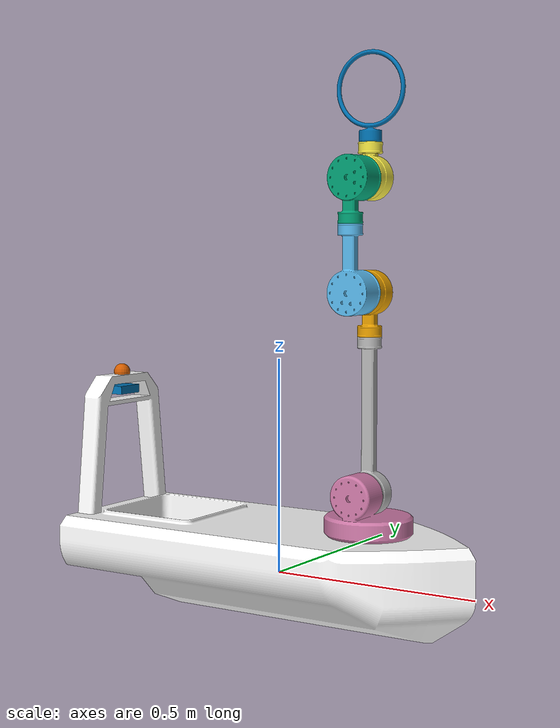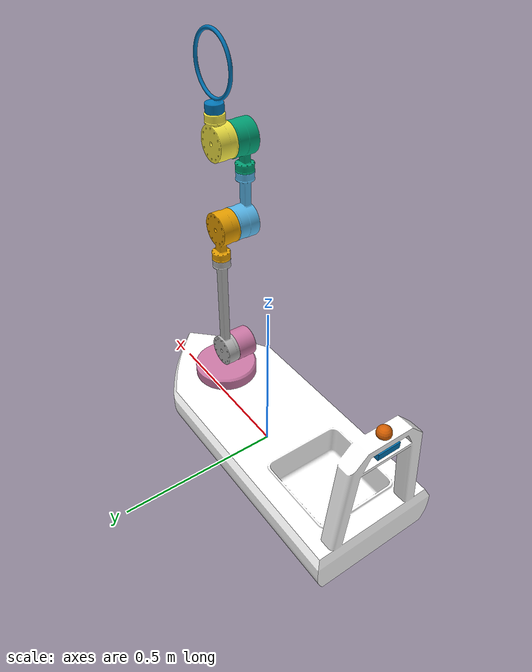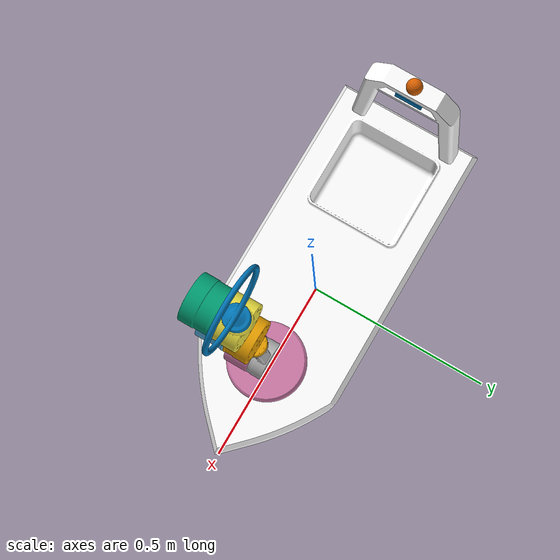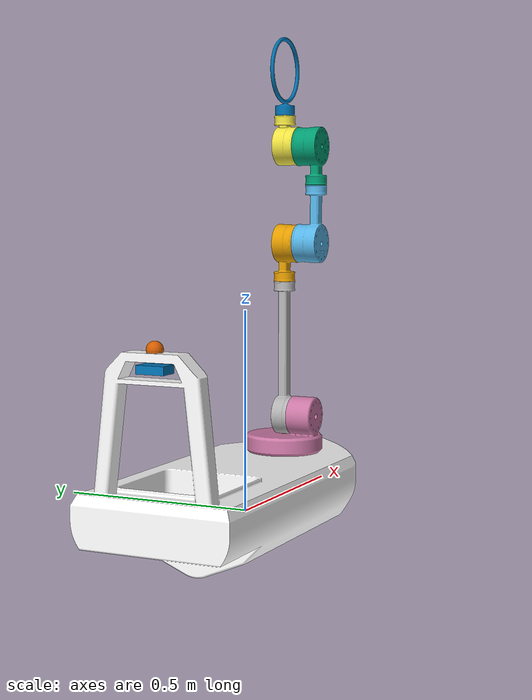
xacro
<?xml version="1.0"?>

<robot name="boat_arm" xmlns:xacro="http://www.ros.org/wiki/xacro">
  <xacro:include filename="$(find semesterprosjekt)/urdf/common_macros.xacro" />
  <xacro:include filename="$(find semesterprosjekt)/urdf/boat_arm.urdf.gazebo" />

  <material name="COLOR">
     <color rgba="1 1 1 1"/>
   </material>
    <link name='base_link'>
      <pose>0 0 ${-(0.221/2) + (0.05/2)} 0 0 0</pose>
      <visual name='chassis_visual'>
        <origin xyz="${1/2} ${0.4/2} ${-(0.221/2)}" rpy="0 0 ${pi/2}"/>
        <geometry>
          <mesh filename="package://semesterprosjekt/mesh/Bote.stl" scale="0.001 0.001 0.001"/>
        </geometry>
        <material name="COLOR"/>
      </visual>
      <collision>
        <origin xyz="0 0 0" rpy="0 0 0"/>
        <geometry>0.07
          <box size="1 0.3 0.221"/>
        </geometry>
      </collision>
      <inertial>
        <mass value="30"/>
        <inertia ixx="0.1075" ixy="0.0" ixz="0.0" iyy="10.0008" iyz="0.0" izz="10.0075"/>
      </inertial>
  </link>

  <link name='front_ball'>
    <collision>
      <geometry>
       <sphere radius="0.05"/>
     </geometry>
     <origin rpy="0 0 0" xyz="0 0 0"/>
   </collision>
   <inertial>
     <mass value="0.01"/>
     <inertia ixx="0.1075" ixy="0.0" ixz="0.0" iyy="0.0008" iyz="0.0" izz="0.0075"/>
   </inertial>
  </link>

  <joint name="front_ball_j" type="continuous">
    <origin xyz="0.3 0 ${-(0.221/2)+(0.05/2)}" rpy="0 0 0"/>
    <parent link="base_link"/>
    <child link="front_ball"/>
    <axis xyz="1 1 1" rpy="1 1 1"/>
  </joint>

  <joint name="left_rear_wheel_j" type="continuous">
    <origin xyz="-0.20 0.20 ${-(0.221/2)+0.10-(0.05/2)}" rpy="${-pi/2} 0 0"/>
    <parent link="base_link"/>
    <child link="lr_wheel"/>
    <axis xyz="0 0 1" rpy="0 0 0"/>
    <limit effort="100" velocity="100"/>
  </joint>

  <xacro:link_wheel link_name="lr_wheel">
    <!-- collison -->
    <origin xyz="0 0 0" rpy="0 0 0"/>
    <!-- inertia -->
    <origin xyz="0 0 0" rpy="0 0 0"/>
  </xacro:link_wheel>

  <joint name="right_rear_wheel_j" type="continuous">
    <origin xyz="-0.20 -0.20 ${-(0.221/2)+0.10-(0.05/2)}" rpy="${-pi/2} 0 0"/>
    <parent link="base_link"/>
    <child link="rr_wheel"/>
    <axis xyz="0 0 1" rpy="0 0 0"/>
    <limit effort="100" velocity="100"/>
  </joint>

  <xacro:link_wheel link_name="rr_wheel">
    <!-- collison -->
    <origin xyz="0 0 0" rpy="0 0 0"/>
    <!-- inertia -->
    <origin xyz="0 0 0" rpy="0 0 0"/>
  </xacro:link_wheel>

  <!-- SENSORS-->

  <!-- CAMERA-->
  <joint name="camera_joint" type="fixed">
    <parent link="base_link"/>
    <child link="camera_link" />
    <origin xyz="-${(1/2) - (0.01 + 0.025)} 0 ${(0.221/2) + 0.2944}" rpy="0 0 0"/>
  </joint>

  <xacro:link_box link_name="camera_link" length="0.05" width="0.07" height="0.02" density="1" mesh_name="nofile">
    <!-- origin visual -->
    <origin xyz="0 0 0" rpy="0 0 0"/>
    <!-- origin collision -->
    <origin xyz="0 0 0" rpy="0 0 0"/>
    <!-- origin interia -->
    <origin xyz="0 0 0" rpy="0 0 0"/>
  </xacro:link_box>

  <!-- GPS-->
  <joint name="gps_joint" type="fixed">
    <parent link="base_link"/>
    <child link="gps_link" />
    <origin xyz="-${(1/2) - (0.01 + 0.025)} 0 ${(0.221/2) + 0.3275}" rpy="0 0 0"/>
  </joint>

  <xacro:link_sphere link_name="gps_link" radius="0.02" density="1" mesh_name="nofile">
    <!-- origin visual -->
    <origin xyz="0 0 ${0.02/2}" rpy="0 0 0"/>
    <!-- origin collision -->
    <origin xyz="0 0 0" rpy="0 0 0"/>
    <!-- origin interia -->
    <origin xyz="0 0 0" rpy="0 0 0"/>
  </xacro:link_sphere>

  <!-- ROBOTIC ARM -->

  <!-- ARM BASE -->
  <joint type="revolute" name="arm_base_joint">
    <origin xyz="${0.500-0.263} 0 ${0.221/2}" rpy="0 0 0"/>
    <child link="arm_base_link"/>
    <parent link="base_link"/>
    <axis xyz="0 0 1" rpy="0 0 0"/>
    <limit effort="100" velocity="100" lower="-${pi}" upper="${pi}"/>
  </joint>

  <xacro:link_cylinder link_name="arm_base_link" radius="${0.20/2}" length="0.10" density="1" mesh_name="package://semesterprosjekt/mesh/Trash_Arm_F1_Fixed04.stl">
    <!-- origin visual -->
    <origin xyz="0 0 0" rpy="0 0 ${pi/2}"/>
    <!-- origin collision -->
    <origin xyz="0 0 0" rpy="0 0 0"/>
    <!-- origin interia -->
    <origin xyz="0 0 0" rpy="0 0 0"/>
  </xacro:link_cylinder>

  <transmission name="arm_base_trans">
    <type>transmission_interface/SimpleTransmission</type>
    <joint name="arm_base_joint">
      <hardwareInterface>hardware_interface/PositionJointInterface</hardwareInterface>
    </joint>
    <actuator name="arm_base_motor">
      <hardwareInterface>hardware_interface/PositionJointInterface</hardwareInterface>
      <mechanicalReduction>1</mechanicalReduction>
    </actuator>
  </transmission>

  <!-- LINK 1 -->
  <joint type="revolute" name="link_1_joint">
    <origin xyz="0 0 0.10" rpy="-${pi/2} 0 0"/>
    <child link="link_1_link"/>
    <parent link="arm_base_link"/>
    <axis xyz="0 0 1" rpy="0 0 0"/>
    <limit effort="100" velocity="100" lower="-${pi}" upper="${pi}"/>
  </joint>

  <xacro:link_cylinder link_name="link_1_link" radius="${0.10/2}" length="0.12" density="1" mesh_name="package://semesterprosjekt/mesh/Robot_Arm_F1_350mm.stl"  >
    <!-- origin visual -->
    <origin xyz="0 0 0" rpy="0 0 -${pi/2}"/>
    <!-- origin collision -->
    <origin xyz="0 0 -0.04" rpy="0 0 0"/>
    <!-- origin interia -->
    <origin xyz="0 0 0" rpy="0 0 0"/>
  </xacro:link_cylinder>

  <transmission name="joint_1_trans">
    <type>transmission_interface/SimpleTransmission</type>
    <joint name="link_1_joint">
      <hardwareInterface>hardware_interface/PositionJointInterface</hardwareInterface>
    </joint>
    <actuator name="joint_1_motor">
      <hardwareInterface>hardware_interface/PositionJointInterface</hardwareInterface>
      <mechanicalReduction>1</mechanicalReduction>
    </actuator>
  </transmission>

  <!-- LINK 2 -->
  <joint type="revolute" name="link_2_joint">
    <origin xyz="0 -0.350 0" rpy="${pi/2} 0 0"/>
    <child link="link_2_link"/>
    <parent link="link_1_link"/>
    <axis xyz="0 0 1" rpy="0 0 0"/>
    <limit effort="100" velocity="100" lower="-${pi}" upper="${pi}"/>
  </joint>

  <xacro:link_cylinder link_name="link_2_link" radius="${0.06/2}" length="${0.350+0.100}" density="1" mesh_name="package://semesterprosjekt/mesh/Robot_Arm_F2_100mm.stl">
    <!-- origin visual -->
    <origin xyz="0 0 0" rpy="0 0 ${pi/2}"/>
    <!-- origin collision -->
    <origin xyz="0 0 -${0.35/2}" rpy="0 0 0"/>
    <!-- origin interia -->
    <origin xyz="0 0 0" rpy="0 0 0"/>
  </xacro:link_cylinder>

  <transmission name="joint_2_trans">
    <type>transmission_interface/SimpleTransmission</type>
    <joint name="link_2_joint">
      <hardwareInterface>hardware_interface/PositionJointInterface</hardwareInterface>
    </joint>
    <actuator name="joint_2_motor">
      <hardwareInterface>hardware_interface/PositionJointInterface</hardwareInterface>
      <mechanicalReduction>1</mechanicalReduction>
    </actuator>
  </transmission>

  <!-- LINK 3 -->
  <joint type="revolute" name="link_3_joint">
    <origin xyz="0 -0.088 0.100" rpy="-${pi/2} 0 0"/>
    <child link="link_3_link"/>
    <parent link="link_2_link"/>
    <axis xyz="0 0 1" rpy="0 0 0"/>
    <limit effort="100" velocity="100" lower="-${pi}" upper="${pi}"/>
  </joint>

  <xacro:link_cylinder link_name="link_3_link" radius="${0.10/2}" length="0.14" density="1" mesh_name="package://semesterprosjekt/mesh/Robot_Arm_F3_150mm.stl">
    <!-- origin visual -->
    <origin xyz="0 0 0" rpy="${pi} 0 -${pi/2}"/>
    <!-- origin collision -->
    <origin xyz="0 0 0.05" rpy="0 0 0"/>
    <!-- origin interia -->
    <origin xyz="0 0 0" rpy="0 0 0"/>
  </xacro:link_cylinder>

  <transmission name="joint_3_trans">
    <type>transmission_interface/SimpleTransmission</type>
    <joint name="link_3_joint">
      <hardwareInterface>hardware_interface/PositionJointInterface</hardwareInterface>
    </joint>
    <actuator name="joint_3_motor">
      <hardwareInterface>hardware_interface/PositionJointInterface</hardwareInterface>
      <mechanicalReduction>1</mechanicalReduction>
    </actuator>
  </transmission>

  <!-- LINK 4 -->
  <joint type="revolute" name="link_4_joint">
    <origin xyz="0 -0.150 0" rpy="${pi/2} 0 0"/>
    <child link="link_4_link"/>
    <parent link="link_3_link"/>
    <axis xyz="0 0 1" rpy="0 0 0"/>
    <limit effort="100" velocity="100" lower="-${pi}" upper="${pi}"/>
  </joint>

  <xacro:link_cylinder link_name="link_4_link" radius="${0.06/2}" length="0.12" density="1" mesh_name="package://semesterprosjekt/mesh/Robot_Arm_F4_100mm.stl">
    <!-- origin visual -->
    <origin xyz="0 0 0" rpy="0 0 -${pi/2}"/>
    <!-- origin collision -->
    <origin xyz="0 0 -0.05" rpy="0 0 0"/>
    <!-- origin interia -->
    <origin xyz="0 0 0" rpy="0 0 0"/>
  </xacro:link_cylinder>

  <transmission name="joint_4_trans">
    <type>transmission_interface/SimpleTransmission</type>
    <joint name="link_4_joint">
      <hardwareInterface>hardware_interface/PositionJointInterface</hardwareInterface>
    </joint>
    <actuator name="joint_4_motor">
      <hardwareInterface>hardware_interface/PositionJointInterface</hardwareInterface>
      <mechanicalReduction>1</mechanicalReduction>
    </actuator>
  </transmission>

  <!-- LINK 5 -->
  <joint type="revolute" name="link_5_joint">
    <origin xyz="0 0.088 0.100" rpy="-${pi/2} 0 0"/>
    <child link="link_5_link"/>
    <parent link="link_4_link"/>
    <axis xyz="0 0 1" rpy="0 0 0"/>
    <limit effort="100" velocity="100" lower="-${pi}" upper="${pi}"/>
  </joint>

  <xacro:link_cylinder link_name="link_5_link" radius="${0.10/2}" length="0.14" density="1" mesh_name="package://semesterprosjekt/mesh/Robot_Arm_F5V_80mm.stl">
    <!-- origin visual -->
    <origin xyz="0 0 0" rpy="${pi} 0 ${pi/2}"/>
    <!-- origin collision -->
    <origin xyz="0 0 -0.04" rpy="0 0 0"/>
    <!-- origin interia -->
    <origin xyz="0 0 0" rpy="0 0 0"/>
  </xacro:link_cylinder>

  <transmission name="joint_5_trans">
    <type>transmission_interface/SimpleTransmission</type>
    <joint name="link_5_joint">
      <hardwareInterface>hardware_interface/PositionJointInterface</hardwareInterface>
    </joint>
    <actuator name="joint_5_motor">
      <hardwareInterface>hardware_interface/PositionJointInterface</hardwareInterface>
      <mechanicalReduction>1</mechanicalReduction>
    </actuator>
  </transmission>

  <!-- LINK 6 -->
  <joint type="revolute" name="link_6_joint">
    <origin xyz="0 -${(0.03 + 0.18)/2} 0" rpy="${pi/2} 0 0"/>
    <child link="link_6_link"/>
    <parent link="link_5_link"/>
    <axis xyz="0 0 1" rpy="0 0 0"/>
    <limit effort="100" velocity="100" lower="-${pi}" upper="${pi}"/>
  </joint>

  <xacro:link_cylinder link_name="link_6_link" radius="0.085" length="0.01" density="1" mesh_name="package://semesterprosjekt/mesh/Robot_Arm_Endefector_01.stl">
    <!-- origin visual -->
    <origin xyz="0 0 0" rpy="-${pi} 0 0"/>
    <!-- origin collision -->
    <origin xyz="0 0 0.09" rpy="-${pi/2} 0 0"/>
    <!-- origin interia -->
    <origin xyz="0 0 0" rpy="0 0 0"/>
  </xacro:link_cylinder>

  <transmission name="joint_6_trans">
    <type>transmission_interface/SimpleTransmission</type>
    <joint name="link_6_joint">
      <hardwareInterface>hardware_interface/PositionJointInterface</hardwareInterface>
    </joint>
    <actuator name="joint_6_motor">
      <hardwareInterface>hardware_interface/PositionJointInterface</hardwareInterface>
      <mechanicalReduction>1</mechanicalReduction>
    </actuator>
  </transmission>

</robot>

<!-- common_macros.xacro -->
<robot name="xacro_macros" xmlns:xacro="http://ros.org/wiki/xacro">

  <xacro:macro name="link_box" params="link_name length width height density:=1 mesh_name:='nofile' *origin_vis *origin_col *origin_inertial">
    <xacro:property name="mass" value="${length*height*width*density}" />
    <link name="${link_name}">
      <visual>
        <xacro:insert_block name="origin_vis" />
        <geometry>
          <xacro:if value="${mesh_name == 'nofile'}">
            <box size="${length} ${width} ${height}"/>
          </xacro:if>
          <xacro:unless value="${mesh_name == 'nofile'}">
            <mesh filename="${mesh_name}" scale="0.001 0.001 0.001" />
          </xacro:unless>
        </geometry>
      </visual>
      <collision>
        <xacro:insert_block name="origin_col" />
        <geometry>
          <box size="${length} ${width} ${height}"/>
        </geometry>
      </collision>
      <inertial>
        <xacro:insert_block name="origin_inertial" />
        <mass value="${mass}"/>
        <inertia
          ixx="${mass*(pow(height,2) + pow(width,2))/12}" ixy="0.0" ixz="0.0"
          iyy="${mass*(pow(length,2) + pow(height,2))/12}" iyz="0.0"
          izz="${mass*(pow(length,2) + pow(width,2))/12}"/>
      </inertial>
    </link>
  </xacro:macro>

  <xacro:macro name="link_cylinder" params="link_name radius length density:=1 mesh_name:='nofile' *origin_vis *origin_col *origin_inertial">
    <xacro:property name="mass" value="${pi*length*pow(radius,2)*density}" />
    <link name="${link_name}">
      <visual>
        <xacro:insert_block name="origin_vis" />
        <geometry>
          <xacro:if value="${mesh_name == 'nofile'}">
            <cylinder length="${length}" radius="${radius}"/>
          </xacro:if>
          <xacro:unless value="${mesh_name == 'nofile'}">
            <mesh filename="${mesh_name}" scale="0.001 0.001 0.001" />
          </xacro:unless>
        </geometry>
      </visual>
      <collision>
        <xacro:insert_block name="origin_col" />
        <geometry>
          <cylinder length="${length}" radius="${radius}"/>
        </geometry>
      </collision>
      <inertial>
        <xacro:insert_block name="origin_inertial" />
        <mass value="${mass}"/>
        <inertia
          ixx="${mass*(3*pow(radius,2)+pow(length,2))/12}" ixy="0.0" ixz="0.0"
          iyy="${mass*(3*pow(radius,2)+pow(length,2))/12}" iyz="0.0"
          izz="${mass*pow(radius,2)/2}"/>
      </inertial>
    </link>
  </xacro:macro>

  <xacro:macro name="link_sphere" params="link_name radius density:=1 mesh_name:='nofile' *origin_vis *origin_col *origin_inertial">
    <xacro:property name="mass" value="${(4/3)*pi*pow(radius,3)}" />
    <link name="${link_name}">
      <visual>
        <xacro:insert_block name="origin_vis" />
        <geometry>
          <xacro:if value="${mesh_name == 'nofile'}">
            <sphere radius="${radius}"/>
          </xacro:if>
          <xacro:unless value="${mesh_name == 'nofile'}">
            <mesh filename="${mesh_name}" />
          </xacro:unless>
        </geometry>
      </visual>
      <collision>
        <xacro:insert_block name="origin_col" />
        <geometry>
          <sphere radius="${radius}"/>
        </geometry>
      </collision>
      <inertial>
        <xacro:insert_block name="origin_inertial" />
        <mass value="${mass}"/>
        <inertia
          ixx="${2*mass*pow(radius,2)/5}" ixy="0.0" ixz="0.0"
          iyy="${2*mass*pow(radius,2)/5}" iyz="0.0"
          izz="${2*mass*pow(radius,2)/5}"/>
      </inertial>
    </link>
  </xacro:macro>

  <xacro:macro name="link_wheel" params="link_name length:=0.10 radius:=0.10 density:=20 *origin_col *origin_inertial">
    <xacro:property name="mass" value="${pi*length*pow(radius,2)*density}" />
    <link name="${link_name}">
      <collision>
        <xacro:insert_block name="origin_col" />
        <geometry>
          <cylinder length="${length}" radius="${radius}"/>
        </geometry>
      </collision>
      <inertial>
        <xacro:insert_block name="origin_inertial" />
        <mass value="${mass}"/>
        <inertia
          ixx="${mass*(3*pow(radius,2)+pow(length,2))/12}" ixy="0.0" ixz="0.0"
          iyy="${mass*(3*pow(radius,2)+pow(length,2))/12}" iyz="0.0"
          izz="${mass*pow(radius,2)/2}"/>
      </inertial>
    </link>
  </xacro:macro>

</robot>
